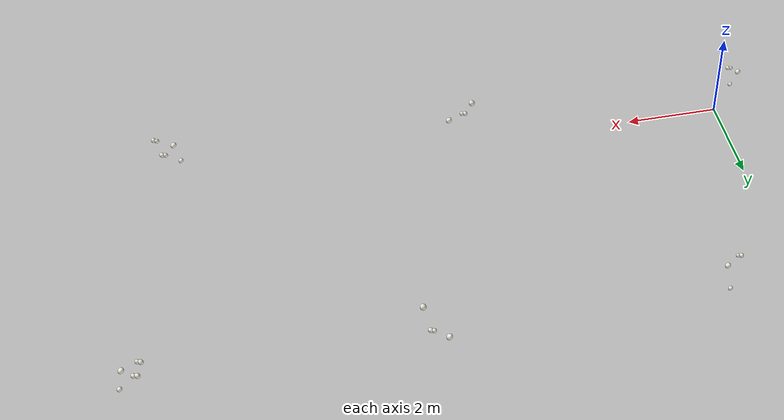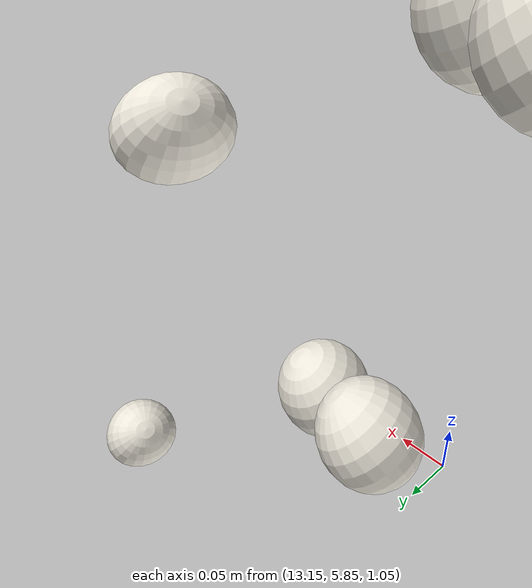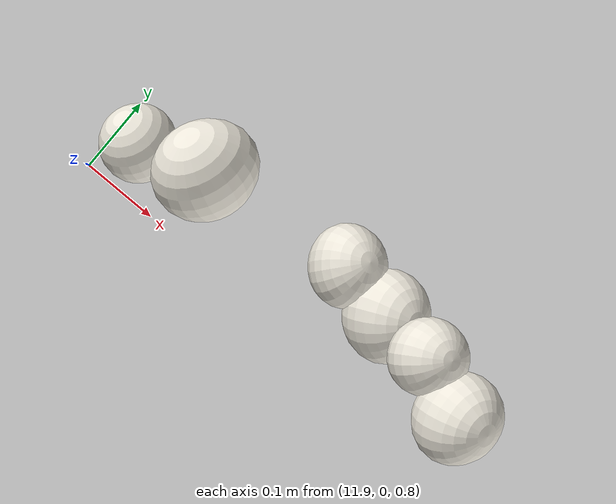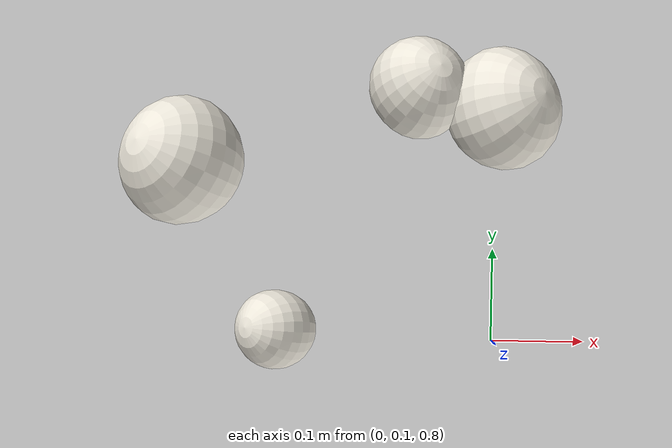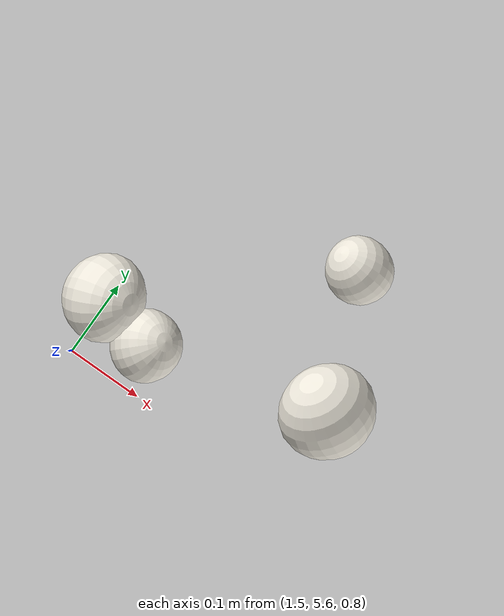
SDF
<sdf version="1.6">
 <world name="cotton_demo">
  <physics name="fast_physics" type="dart">
   <max_step_size>0.005</max_step_size>
   <real_time_factor>1.0</real_time_factor>
  </physics>
  <plugin filename="ignition-gazebo-physics-system" name="ignition::gazebo::systems::Physics"/>
  <plugin filename="ignition-gazebo-user-commands-system" name="ignition::gazebo::systems::UserCommands"/>
  <plugin filename="ignition-gazebo-scene-broadcaster-system" name="ignition::gazebo::systems::SceneBroadcaster"/>
  <plugin filename="ignition-gazebo-sensors-system" name="ignition::gazebo::systems::Sensors">
   <render_engine>ogre2</render_engine>
  </plugin>
  <plugin filename="ignition-gazebo-imu-system" name="ignition::gazebo::systems::Imu"/>
  <scene>
   <ambient>0.48 0.48 0.48 1</ambient>
   <background>0.70 0.76 0.82 1</background>
   <shadows>true</shadows>
  </scene>
  <light type="directional" name="sun">
   <pose>0 0 10 0 0 0</pose>
   <diffuse>0.90 0.86 0.78 1</diffuse>
   <specular>0.20 0.20 0.20 1</specular>
   <attenuation>
    <range>1000</range>
    <constant>0.9</constant>
    <linear>0.01</linear>
    <quadratic>0.001</quadratic>
   </attenuation>
   <direction>-0.35 0.25 -0.90</direction>
  </light>
  <model name="ground_plane">
   <static>true</static>
   <link name="link">
    <collision name="collision">
     <geometry><plane><normal>0 0 1</normal><size>76 76</size></plane></geometry>
     <surface><friction><ode><mu>100</mu><mu2>50</mu2></ode></friction></surface>
    </collision>
   </link>
  </model>
  <model name="cluster_A_01__cotton_pick_B_01">
   <static>true</static>
   <pose>-0.2356 0.1103 0.8285 0 0 0</pose>
   <link name="link">
    <visual name="visual">
     <geometry>
      <mesh><uri>model://cotton_pick_B_01/meshes/cotton_pick_B_01.dae</uri><scale>2.19 2.19 2.19</scale></mesh>
     </geometry>
     <material>
      <ambient>0.95 0.93 0.88 1.0</ambient>
      <diffuse>0.95 0.93 0.88 1.0</diffuse>
      <specular>0.10 0.10 0.10 1</specular>
     </material>
    </visual>
   </link>
  </model>
  <model name="cluster_A_01__cotton_pick_B_02">
   <static>true</static>
   <pose>-0.2920 0.2762 1.3210 0 0 0</pose>
   <link name="link">
    <visual name="visual">
     <geometry>
      <mesh><uri>model://cotton_pick_B_02/meshes/cotton_pick_B_02.dae</uri><scale>2.19 2.19 2.19</scale></mesh>
     </geometry>
     <material>
      <ambient>0.95 0.93 0.88 1.0</ambient>
      <diffuse>0.95 0.93 0.88 1.0</diffuse>
      <specular>0.10 0.10 0.10 1</specular>
     </material>
    </visual>
   </link>
  </model>
  <model name="cluster_A_01__cotton_pick_B_03">
   <static>true</static>
   <pose>-0.0923 0.3287 1.5059 0 0 0</pose>
   <link name="link">
    <visual name="visual">
     <geometry>
      <mesh><uri>model://cotton_pick_B_03/meshes/cotton_pick_B_03.dae</uri><scale>2.19 2.19 2.19</scale></mesh>
     </geometry>
     <material>
      <ambient>0.95 0.93 0.88 1.0</ambient>
      <diffuse>0.95 0.93 0.88 1.0</diffuse>
      <specular>0.10 0.10 0.10 1</specular>
     </material>
    </visual>
   </link>
  </model>
  <model name="cluster_A_01__cotton_pick_B_04">
   <static>true</static>
   <pose>-0.0280 0.3131 1.5106 0 0 0</pose>
   <link name="link">
    <visual name="visual">
     <geometry>
      <mesh><uri>model://cotton_pick_B_04/meshes/cotton_pick_B_04.dae</uri><scale>2.19 2.19 2.19</scale></mesh>
     </geometry>
     <material>
      <ambient>0.95 0.93 0.88 1.0</ambient>
      <diffuse>0.95 0.93 0.88 1.0</diffuse>
      <specular>0.10 0.10 0.10 1</specular>
     </material>
    </visual>
   </link>
  </model>
  <model name="cluster_C_01__cotton_pick_C_01">
   <static>true</static>
   <pose>6.1366 0.0146 0.8564 0 0 0</pose>
   <link name="link">
    <visual name="visual">
     <geometry>
      <mesh><uri>model://cotton_pick_C_01/meshes/cotton_pick_C_01.dae</uri><scale>2.577 2.577 2.577</scale></mesh>
     </geometry>
     <material>
      <ambient>0.95 0.93 0.88 1.0</ambient>
      <diffuse>0.95 0.93 0.88 1.0</diffuse>
      <specular>0.10 0.10 0.10 1</specular>
     </material>
    </visual>
   </link>
  </model>
  <model name="cluster_C_01__cotton_pick_C_02">
   <static>true</static>
   <pose>5.8561 0.0675 1.0451 0 0 0</pose>
   <link name="link">
    <visual name="visual">
     <geometry>
      <mesh><uri>model://cotton_pick_C_02/meshes/cotton_pick_C_02.dae</uri><scale>2.577 2.577 2.577</scale></mesh>
     </geometry>
     <material>
      <ambient>0.95 0.93 0.88 1.0</ambient>
      <diffuse>0.95 0.93 0.88 1.0</diffuse>
      <specular>0.10 0.10 0.10 1</specular>
     </material>
    </visual>
   </link>
  </model>
  <model name="cluster_C_01__cotton_pick_C_03">
   <static>true</static>
   <pose>5.7915 0.0869 1.0543 0 0 0</pose>
   <link name="link">
    <visual name="visual">
     <geometry>
      <mesh><uri>model://cotton_pick_C_03/meshes/cotton_pick_C_03.dae</uri><scale>2.577 2.577 2.577</scale></mesh>
     </geometry>
     <material>
      <ambient>0.95 0.93 0.88 1.0</ambient>
      <diffuse>0.95 0.93 0.88 1.0</diffuse>
      <specular>0.10 0.10 0.10 1</specular>
     </material>
    </visual>
   </link>
  </model>
  <model name="cluster_C_01__cotton_pick_C_04">
   <static>true</static>
   <pose>5.6901 0.2898 1.5132 0 0 0</pose>
   <link name="link">
    <visual name="visual">
     <geometry>
      <mesh><uri>model://cotton_pick_C_04/meshes/cotton_pick_C_04.dae</uri><scale>2.577 2.577 2.577</scale></mesh>
     </geometry>
     <material>
      <ambient>0.95 0.93 0.88 1.0</ambient>
      <diffuse>0.95 0.93 0.88 1.0</diffuse>
      <specular>0.10 0.10 0.10 1</specular>
     </material>
    </visual>
   </link>
  </model>
  <model name="cluster_B_02__cotton_pick_A_01">
   <static>true</static>
   <pose>11.9310 0.0604 0.8379 0 0 0</pose>
   <link name="link">
    <visual name="visual">
     <geometry>
      <mesh><uri>model://cotton_pick_A_01/meshes/cotton_pick_A_01.dae</uri><scale>2.463 2.463 2.463</scale></mesh>
     </geometry>
     <material>
      <ambient>0.95 0.93 0.88 1.0</ambient>
      <diffuse>0.95 0.93 0.88 1.0</diffuse>
      <specular>0.10 0.10 0.10 1</specular>
     </material>
    </visual>
   </link>
  </model>
  <model name="cluster_B_02__cotton_pick_A_02">
   <static>true</static>
   <pose>12.2252 0.1086 1.0986 0 0 0</pose>
   <link name="link">
    <visual name="visual">
     <geometry>
      <mesh><uri>model://cotton_pick_A_02/meshes/cotton_pick_A_02.dae</uri><scale>2.463 2.463 2.463</scale></mesh>
     </geometry>
     <material>
      <ambient>0.95 0.93 0.88 1.0</ambient>
      <diffuse>0.95 0.93 0.88 1.0</diffuse>
      <specular>0.10 0.10 0.10 1</specular>
     </material>
    </visual>
   </link>
  </model>
  <model name="cluster_B_02__cotton_pick_A_03">
   <static>true</static>
   <pose>12.2976 0.0928 1.1000 0 0 0</pose>
   <link name="link">
    <visual name="visual">
     <geometry>
      <mesh><uri>model://cotton_pick_A_03/meshes/cotton_pick_A_03.dae</uri><scale>2.463 2.463 2.463</scale></mesh>
     </geometry>
     <material>
      <ambient>0.95 0.93 0.88 1.0</ambient>
      <diffuse>0.95 0.93 0.88 1.0</diffuse>
      <specular>0.10 0.10 0.10 1</specular>
     </material>
    </visual>
   </link>
  </model>
  <model name="cluster_B_02__cotton_pick_A_04">
   <static>true</static>
   <pose>12.0310 0.0872 1.3275 0 0 0</pose>
   <link name="link">
    <visual name="visual">
     <geometry>
      <mesh><uri>model://cotton_pick_A_04/meshes/cotton_pick_A_04.dae</uri><scale>2.463 2.463 2.463</scale></mesh>
     </geometry>
     <material>
      <ambient>0.95 0.93 0.88 1.0</ambient>
      <diffuse>0.95 0.93 0.88 1.0</diffuse>
      <specular>0.10 0.10 0.10 1</specular>
     </material>
    </visual>
   </link>
  </model>
  <model name="cluster_B_02__cotton_pick_A_05">
   <static>true</static>
   <pose>12.3514 0.0866 1.5072 0 0 0</pose>
   <link name="link">
    <visual name="visual">
     <geometry>
      <mesh><uri>model://cotton_pick_A_05/meshes/cotton_pick_A_05.dae</uri><scale>2.463 2.463 2.463</scale></mesh>
     </geometry>
     <material>
      <ambient>0.95 0.93 0.88 1.0</ambient>
      <diffuse>0.95 0.93 0.88 1.0</diffuse>
      <specular>0.10 0.10 0.10 1</specular>
     </material>
    </visual>
   </link>
  </model>
  <model name="cluster_B_02__cotton_pick_A_06">
   <static>true</static>
   <pose>12.4170 0.0567 1.5126 0 0 0</pose>
   <link name="link">
    <visual name="visual">
     <geometry>
      <mesh><uri>model://cotton_pick_A_06/meshes/cotton_pick_A_06.dae</uri><scale>2.463 2.463 2.463</scale></mesh>
     </geometry>
     <material>
      <ambient>0.95 0.93 0.88 1.0</ambient>
      <diffuse>0.95 0.93 0.88 1.0</diffuse>
      <specular>0.10 0.10 0.10 1</specular>
     </material>
    </visual>
   </link>
  </model>
  <model name="cluster_A_03__cotton_pick_B_01">
   <static>true</static>
   <pose>1.7356 5.8897 0.8285 0 0 0</pose>
   <link name="link">
    <visual name="visual">
     <geometry>
      <mesh><uri>model://cotton_pick_B_01/meshes/cotton_pick_B_01.dae</uri><scale>2.19 2.19 2.19</scale></mesh>
     </geometry>
     <material>
      <ambient>0.95 0.93 0.88 1.0</ambient>
      <diffuse>0.95 0.93 0.88 1.0</diffuse>
      <specular>0.10 0.10 0.10 1</specular>
     </material>
    </visual>
   </link>
  </model>
  <model name="cluster_A_03__cotton_pick_B_02">
   <static>true</static>
   <pose>1.7920 5.7238 1.3210 0 0 0</pose>
   <link name="link">
    <visual name="visual">
     <geometry>
      <mesh><uri>model://cotton_pick_B_02/meshes/cotton_pick_B_02.dae</uri><scale>2.19 2.19 2.19</scale></mesh>
     </geometry>
     <material>
      <ambient>0.95 0.93 0.88 1.0</ambient>
      <diffuse>0.95 0.93 0.88 1.0</diffuse>
      <specular>0.10 0.10 0.10 1</specular>
     </material>
    </visual>
   </link>
  </model>
  <model name="cluster_A_03__cotton_pick_B_03">
   <static>true</static>
   <pose>1.5923 5.6713 1.5059 0 0 0</pose>
   <link name="link">
    <visual name="visual">
     <geometry>
      <mesh><uri>model://cotton_pick_B_03/meshes/cotton_pick_B_03.dae</uri><scale>2.19 2.19 2.19</scale></mesh>
     </geometry>
     <material>
      <ambient>0.95 0.93 0.88 1.0</ambient>
      <diffuse>0.95 0.93 0.88 1.0</diffuse>
      <specular>0.10 0.10 0.10 1</specular>
     </material>
    </visual>
   </link>
  </model>
  <model name="cluster_A_03__cotton_pick_B_04">
   <static>true</static>
   <pose>1.5280 5.6869 1.5106 0 0 0</pose>
   <link name="link">
    <visual name="visual">
     <geometry>
      <mesh><uri>model://cotton_pick_B_04/meshes/cotton_pick_B_04.dae</uri><scale>2.19 2.19 2.19</scale></mesh>
     </geometry>
     <material>
      <ambient>0.95 0.93 0.88 1.0</ambient>
      <diffuse>0.95 0.93 0.88 1.0</diffuse>
      <specular>0.10 0.10 0.10 1</specular>
     </material>
    </visual>
   </link>
  </model>
  <model name="cluster_C_03__cotton_pick_C_01">
   <static>true</static>
   <pose>7.3634 5.9854 0.8564 0 0 0</pose>
   <link name="link">
    <visual name="visual">
     <geometry>
      <mesh><uri>model://cotton_pick_C_01/meshes/cotton_pick_C_01.dae</uri><scale>2.577 2.577 2.577</scale></mesh>
     </geometry>
     <material>
      <ambient>0.95 0.93 0.88 1.0</ambient>
      <diffuse>0.95 0.93 0.88 1.0</diffuse>
      <specular>0.10 0.10 0.10 1</specular>
     </material>
    </visual>
   </link>
  </model>
  <model name="cluster_C_03__cotton_pick_C_02">
   <static>true</static>
   <pose>7.6439 5.9325 1.0451 0 0 0</pose>
   <link name="link">
    <visual name="visual">
     <geometry>
      <mesh><uri>model://cotton_pick_C_02/meshes/cotton_pick_C_02.dae</uri><scale>2.577 2.577 2.577</scale></mesh>
     </geometry>
     <material>
      <ambient>0.95 0.93 0.88 1.0</ambient>
      <diffuse>0.95 0.93 0.88 1.0</diffuse>
      <specular>0.10 0.10 0.10 1</specular>
     </material>
    </visual>
   </link>
  </model>
  <model name="cluster_C_03__cotton_pick_C_03">
   <static>true</static>
   <pose>7.7085 5.9131 1.0543 0 0 0</pose>
   <link name="link">
    <visual name="visual">
     <geometry>
      <mesh><uri>model://cotton_pick_C_03/meshes/cotton_pick_C_03.dae</uri><scale>2.577 2.577 2.577</scale></mesh>
     </geometry>
     <material>
      <ambient>0.95 0.93 0.88 1.0</ambient>
      <diffuse>0.95 0.93 0.88 1.0</diffuse>
      <specular>0.10 0.10 0.10 1</specular>
     </material>
    </visual>
   </link>
  </model>
  <model name="cluster_C_03__cotton_pick_C_04">
   <static>true</static>
   <pose>7.8099 5.7102 1.5132 0 0 0</pose>
   <link name="link">
    <visual name="visual">
     <geometry>
      <mesh><uri>model://cotton_pick_C_04/meshes/cotton_pick_C_04.dae</uri><scale>2.577 2.577 2.577</scale></mesh>
     </geometry>
     <material>
      <ambient>0.95 0.93 0.88 1.0</ambient>
      <diffuse>0.95 0.93 0.88 1.0</diffuse>
      <specular>0.10 0.10 0.10 1</specular>
     </material>
    </visual>
   </link>
  </model>
  <model name="cluster_B_04__cotton_pick_A_01">
   <static>true</static>
   <pose>13.5690 5.9396 0.8379 0 0 0</pose>
   <link name="link">
    <visual name="visual">
     <geometry>
      <mesh><uri>model://cotton_pick_A_01/meshes/cotton_pick_A_01.dae</uri><scale>2.463 2.463 2.463</scale></mesh>
     </geometry>
     <material>
      <ambient>0.95 0.93 0.88 1.0</ambient>
      <diffuse>0.95 0.93 0.88 1.0</diffuse>
      <specular>0.10 0.10 0.10 1</specular>
     </material>
    </visual>
   </link>
  </model>
  <model name="cluster_B_04__cotton_pick_A_02">
   <static>true</static>
   <pose>13.2748 5.8914 1.0986 0 0 0</pose>
   <link name="link">
    <visual name="visual">
     <geometry>
      <mesh><uri>model://cotton_pick_A_02/meshes/cotton_pick_A_02.dae</uri><scale>2.463 2.463 2.463</scale></mesh>
     </geometry>
     <material>
      <ambient>0.95 0.93 0.88 1.0</ambient>
      <diffuse>0.95 0.93 0.88 1.0</diffuse>
      <specular>0.10 0.10 0.10 1</specular>
     </material>
    </visual>
   </link>
  </model>
  <model name="cluster_B_04__cotton_pick_A_03">
   <static>true</static>
   <pose>13.2024 5.9072 1.1000 0 0 0</pose>
   <link name="link">
    <visual name="visual">
     <geometry>
      <mesh><uri>model://cotton_pick_A_03/meshes/cotton_pick_A_03.dae</uri><scale>2.463 2.463 2.463</scale></mesh>
     </geometry>
     <material>
      <ambient>0.95 0.93 0.88 1.0</ambient>
      <diffuse>0.95 0.93 0.88 1.0</diffuse>
      <specular>0.10 0.10 0.10 1</specular>
     </material>
    </visual>
   </link>
  </model>
  <model name="cluster_B_04__cotton_pick_A_04">
   <static>true</static>
   <pose>13.4690 5.9128 1.3275 0 0 0</pose>
   <link name="link">
    <visual name="visual">
     <geometry>
      <mesh><uri>model://cotton_pick_A_04/meshes/cotton_pick_A_04.dae</uri><scale>2.463 2.463 2.463</scale></mesh>
     </geometry>
     <material>
      <ambient>0.95 0.93 0.88 1.0</ambient>
      <diffuse>0.95 0.93 0.88 1.0</diffuse>
      <specular>0.10 0.10 0.10 1</specular>
     </material>
    </visual>
   </link>
  </model>
  <model name="cluster_B_04__cotton_pick_A_05">
   <static>true</static>
   <pose>13.1486 5.9134 1.5072 0 0 0</pose>
   <link name="link">
    <visual name="visual">
     <geometry>
      <mesh><uri>model://cotton_pick_A_05/meshes/cotton_pick_A_05.dae</uri><scale>2.463 2.463 2.463</scale></mesh>
     </geometry>
     <material>
      <ambient>0.95 0.93 0.88 1.0</ambient>
      <diffuse>0.95 0.93 0.88 1.0</diffuse>
      <specular>0.10 0.10 0.10 1</specular>
     </material>
    </visual>
   </link>
  </model>
  <model name="cluster_B_04__cotton_pick_A_06">
   <static>true</static>
   <pose>13.0830 5.9433 1.5126 0 0 0</pose>
   <link name="link">
    <visual name="visual">
     <geometry>
      <mesh><uri>model://cotton_pick_A_06/meshes/cotton_pick_A_06.dae</uri><scale>2.463 2.463 2.463</scale></mesh>
     </geometry>
     <material>
      <ambient>0.95 0.93 0.88 1.0</ambient>
      <diffuse>0.95 0.93 0.88 1.0</diffuse>
      <specular>0.10 0.10 0.10 1</specular>
     </material>
    </visual>
   </link>
  </model>
 </world>
</sdf>
